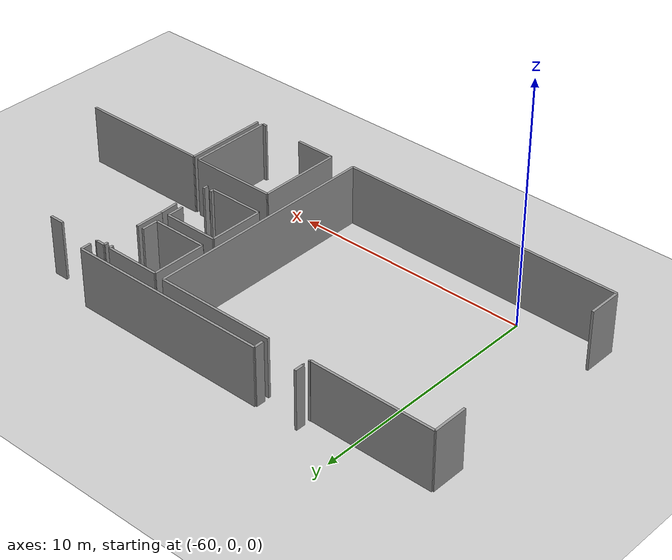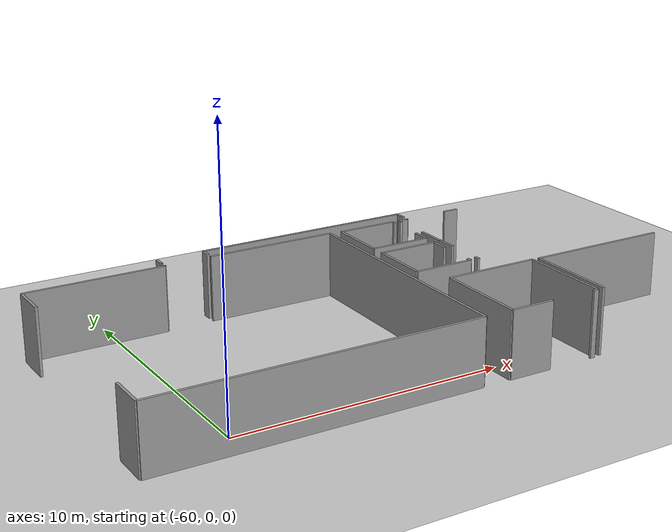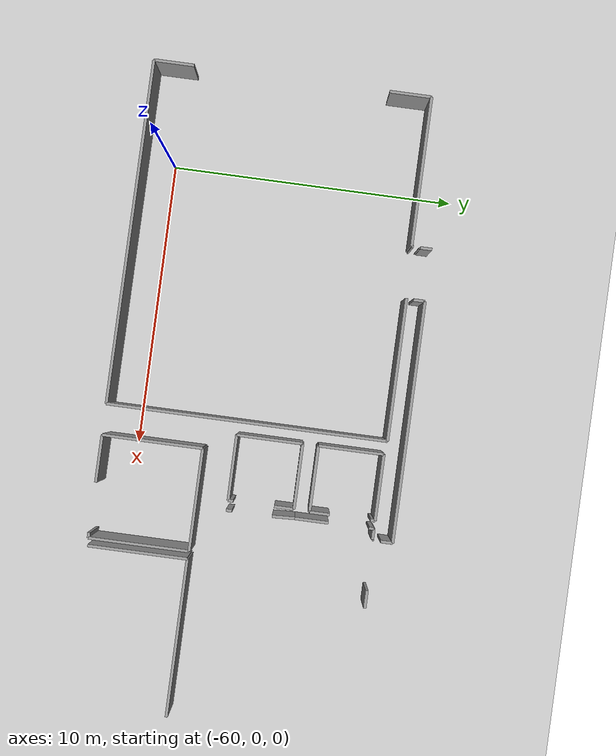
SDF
<sdf version="1.6">
 <world name="default">
  <model name="ground_plane">
   <static>1</static>
   <link name="link">
    <collision name="collision">
     <geometry><plane><normal>0 0 1</normal><size>100 100</size></plane></geometry>
     <surface><friction><ode><mu>100</mu><mu2>50</mu2></ode></friction></surface>
    </collision>
    <visual name="visual">
     <cast_shadows>0</cast_shadows>
     <geometry><plane><normal>0 0 1</normal><size>100 100</size></plane></geometry>
     <material>
      <script><uri>file://media/materials/scripts/gazebo.material</uri><name>Gazebo/Grey</name></script>
     </material>
    </visual>
   </link>
  </model>
  <model name="0510032196_A_40_1_104">
   <static>1</static>
   <link name="Wall_341">
    <collision name="Wall_341_Collision">
     <geometry><box><size>3.51939403182 0.1 2.5</size></box></geometry>
     <pose>1.75969701591 0 1.25 0 0 0</pose>
    </collision>
    <visual name="Wall_341_Visual">
     <pose>1.75969701591 0 1.25 0 0 0</pose>
     <geometry><box><size>3.51939403182 0.1 2.5</size></box></geometry>
     <material>
      <script><uri>file://media/materials/scripts/gazebo.material</uri><name>Gazebo/Grey</name></script>
      <ambient>1 1 1 1</ambient>
     </material>
    </visual>
    <pose>15.2802348635 -25.2311778761 0 0 0 1.57079632679</pose>
   </link>
   <link name="Wall_342">
    <collision name="Wall_342_Collision">
     <geometry><box><size>3.60784911799 0.1 2.5</size></box></geometry>
     <pose>1.803924559 0 1.25 0 0 0</pose>
    </collision>
    <visual name="Wall_342_Visual">
     <pose>1.803924559 0 1.25 0 0 0</pose>
     <geometry><box><size>3.60784911799 0.1 2.5</size></box></geometry>
     <material>
      <script><uri>file://media/materials/scripts/gazebo.material</uri><name>Gazebo/Grey</name></script>
      <ambient>1 1 1 1</ambient>
     </material>
    </visual>
    <pose>15.2802348635 -21.7117838442 0 0 0 0.0</pose>
   </link>
   <link name="Wall_343">
    <collision name="Wall_343_Collision">
     <geometry><box><size>3.52638401708 0.1 2.5</size></box></geometry>
     <pose>1.76319200854 0 1.25 0 0 0</pose>
    </collision>
    <visual name="Wall_343_Visual">
     <pose>1.76319200854 0 1.25 0 0 0</pose>
     <geometry><box><size>3.52638401708 0.1 2.5</size></box></geometry>
     <material>
      <script><uri>file://media/materials/scripts/gazebo.material</uri><name>Gazebo/Grey</name></script>
      <ambient>1 1 1 1</ambient>
     </material>
    </visual>
    <pose>18.8880839815 -21.7117838442 0 0 0 -1.57079632679</pose>
   </link>
   <link name="Wall_344">
    <collision name="Wall_344_Collision">
     <geometry><box><size>0.192288139901 0.1 2.5</size></box></geometry>
     <pose>0.0961440699507 0 1.25 0 0 0</pose>
    </collision>
    <visual name="Wall_344_Visual">
     <pose>0.0961440699507 0 1.25 0 0 0</pose>
     <geometry><box><size>0.192288139901 0.1 2.5</size></box></geometry>
     <material>
      <script><uri>file://media/materials/scripts/gazebo.material</uri><name>Gazebo/Grey</name></script>
      <ambient>1 1 1 1</ambient>
     </material>
    </visual>
    <pose>18.8880839815 -25.2381678613 0 0 0 3.14159265359</pose>
   </link>
   <link name="Wall_345">
    <collision name="Wall_345_Collision">
     <geometry><box><size>1.66070811716 0.1 2.5</size></box></geometry>
     <pose>0.830354058582 0 1.25 0 0 0</pose>
    </collision>
    <visual name="Wall_345_Visual">
     <pose>0.830354058582 0 1.25 0 0 0</pose>
     <geometry><box><size>1.66070811716 0.1 2.5</size></box></geometry>
     <material>
      <script><uri>file://media/materials/scripts/gazebo.material</uri><name>Gazebo/Grey</name></script>
      <ambient>1 1 1 1</ambient>
     </material>
    </visual>
    <pose>16.94092827 -25.2381678613 0 0 0 3.13738360215</pose>
   </link>
   <link name="Wall_346">
    <collision name="Wall_346_Collision">
     <geometry><box><size>3.49588226323 0.1 2.5</size></box></geometry>
     <pose>1.74794113162 0 1.25 0 0 0</pose>
    </collision>
    <visual name="Wall_346_Visual">
     <pose>1.74794113162 0 1.25 0 0 0</pose>
     <geometry><box><size>3.49588226323 0.1 2.5</size></box></geometry>
     <material>
      <script><uri>file://media/materials/scripts/gazebo.material</uri><name>Gazebo/Grey</name></script>
      <ambient>1 1 1 1</ambient>
     </material>
    </visual>
    <pose>19.1554826903 -25.2299069697 0 0 0 1.57079632679</pose>
   </link>
   <link name="Wall_347">
    <collision name="Wall_347_Collision">
     <geometry><box><size>5.53772050226 0.1 2.5</size></box></geometry>
     <pose>2.76886025113 0 1.25 0 0 0</pose>
    </collision>
    <visual name="Wall_347_Visual">
     <pose>2.76886025113 0 1.25 0 0 0</pose>
     <geometry><box><size>5.53772050226 0.1 2.5</size></box></geometry>
     <material>
      <script><uri>file://media/materials/scripts/gazebo.material</uri><name>Gazebo/Grey</name></script>
      <ambient>1 1 1 1</ambient>
     </material>
    </visual>
    <pose>19.1554826903 -21.7340247064 0 0 0 0.0</pose>
   </link>
   <link name="Wall_376">
    <collision name="Wall_376_Collision">
     <geometry><box><size>1.41184993137 0.1 2.5</size></box></geometry>
     <pose>0.705924965686 0 1.25 0 0 0</pose>
    </collision>
    <visual name="Wall_376_Visual">
     <pose>0.705924965686 0 1.25 0 0 0</pose>
     <geometry><box><size>1.41184993137 0.1 2.5</size></box></geometry>
     <material>
      <script><uri>file://media/materials/scripts/gazebo.material</uri><name>Gazebo/Grey</name></script>
      <ambient>1 1 1 1</ambient>
     </material>
    </visual>
    <pose>2.15342382187 -25.1807228916 0 0 0 1.57079632679</pose>
   </link>
   <link name="Wall_377">
    <collision name="Wall_377_Collision">
     <geometry><box><size>1.46154237202 0.1 2.5</size></box></geometry>
     <pose>0.73077118601 0 1.25 0 0 0</pose>
    </collision>
    <visual name="Wall_377_Visual">
     <pose>0.73077118601 0 1.25 0 0 0</pose>
     <geometry><box><size>1.46154237202 0.1 2.5</size></box></geometry>
     <material>
      <script><uri>file://media/materials/scripts/gazebo.material</uri><name>Gazebo/Grey</name></script>
      <ambient>1 1 1 1</ambient>
     </material>
    </visual>
    <pose>2.15342382187 -16.9200854049 0 0 0 1.57079632679</pose>
   </link>
   <link name="Wall_378">
    <collision name="Wall_378_Collision">
     <geometry><box><size>5.21948553709 0.1 2.5</size></box></geometry>
     <pose>2.60974276854 0 1.25 0 0 0</pose>
    </collision>
    <visual name="Wall_378_Visual">
     <pose>2.60974276854 0 1.25 0 0 0</pose>
     <geometry><box><size>5.21948553709 0.1 2.5</size></box></geometry>
     <material>
      <script><uri>file://media/materials/scripts/gazebo.material</uri><name>Gazebo/Grey</name></script>
      <ambient>1 1 1 1</ambient>
     </material>
    </visual>
    <pose>2.15342382187 -15.4585430329 0 0 0 0.0</pose>
   </link>
   <link name="Wall_379">
    <collision name="Wall_379_Collision">
     <geometry><box><size>0.0641807737278 0.1 2.5</size></box></geometry>
     <pose>0.0320903868639 0 1.25 0 0 0</pose>
    </collision>
    <visual name="Wall_379_Visual">
     <pose>0.0320903868639 0 1.25 0 0 0</pose>
     <geometry><box><size>0.0641807737278 0.1 2.5</size></box></geometry>
     <material>
      <script><uri>file://media/materials/scripts/gazebo.material</uri><name>Gazebo/Grey</name></script>
      <ambient>1 1 1 1</ambient>
     </material>
    </visual>
    <pose>7.37290935895 -15.4585430329 0 0 0 1.57079632679</pose>
   </link>
   <link name="Wall_380">
    <collision name="Wall_380_Collision">
     <geometry><box><size>5.00088963449 0.1 2.5</size></box></geometry>
     <pose>2.50044481724 0 1.25 0 0 0</pose>
    </collision>
    <visual name="Wall_380_Visual">
     <pose>2.50044481724 0 1.25 0 0 0</pose>
     <geometry><box><size>5.00088963449 0.1 2.5</size></box></geometry>
     <material>
      <script><uri>file://media/materials/scripts/gazebo.material</uri><name>Gazebo/Grey</name></script>
      <ambient>1 1 1 1</ambient>
     </material>
    </visual>
    <pose>9.18623862539 -15.3943622592 0 0 0 0.0</pose>
   </link>
   <link name="Wall_381">
    <collision name="Wall_381_Collision">
     <geometry><box><size>9.84202633318 0.1 2.5</size></box></geometry>
     <pose>4.92101316659 0 1.25 0 0 0</pose>
    </collision>
    <visual name="Wall_381_Visual">
     <pose>4.92101316659 0 1.25 0 0 0</pose>
     <geometry><box><size>9.84202633318 0.1 2.5</size></box></geometry>
     <material>
      <script><uri>file://media/materials/scripts/gazebo.material</uri><name>Gazebo/Grey</name></script>
      <ambient>1 1 1 1</ambient>
     </material>
    </visual>
    <pose>14.1871282599 -15.3943622592 0 0 0 -1.57079632679</pose>
   </link>
   <link name="Wall_382">
    <collision name="Wall_382_Collision">
     <geometry><box><size>12.033833187 0.1 2.5</size></box></geometry>
     <pose>6.01691659348 0 1.25 0 0 0</pose>
    </collision>
    <visual name="Wall_382_Visual">
     <pose>6.01691659348 0 1.25 0 0 0</pose>
     <geometry><box><size>12.033833187 0.1 2.5</size></box></geometry>
     <material>
      <script><uri>file://media/materials/scripts/gazebo.material</uri><name>Gazebo/Grey</name></script>
      <ambient>1 1 1 1</ambient>
     </material>
    </visual>
    <pose>14.1871282599 -25.2363885923 0 0 0 3.13696687073</pose>
   </link>
   <link name="Wall_383">
    <collision name="Wall_383_Collision">
     <geometry><box><size>2.28941080779 0.1 2.5</size></box></geometry>
     <pose>1.14470540389 0 1.25 0 0 0</pose>
    </collision>
    <visual name="Wall_383_Visual">
     <pose>1.14470540389 0 1.25 0 0 0</pose>
     <geometry><box><size>2.28941080779 0.1 2.5</size></box></geometry>
     <material>
      <script><uri>file://media/materials/scripts/gazebo.material</uri><name>Gazebo/Grey</name></script>
      <ambient>1 1 1 1</ambient>
     </material>
    </visual>
    <pose>14.6582532662 -17.744649484 0 0 0 1.57079632679</pose>
   </link>
   <link name="Wall_384">
    <collision name="Wall_384_Collision">
     <geometry><box><size>2.32270855574 0.1 2.5</size></box></geometry>
     <pose>1.16135427787 0 1.25 0 0 0</pose>
    </collision>
    <visual name="Wall_384_Visual">
     <pose>1.16135427787 0 1.25 0 0 0</pose>
     <geometry><box><size>2.32270855574 0.1 2.5</size></box></geometry>
     <material>
      <script><uri>file://media/materials/scripts/gazebo.material</uri><name>Gazebo/Grey</name></script>
      <ambient>1 1 1 1</ambient>
     </material>
    </visual>
    <pose>14.6582532662 -15.4552386762 0 0 0 0.0</pose>
   </link>
   <link name="Wall_385">
    <collision name="Wall_385_Collision">
     <geometry><box><size>0.157719485537 0.1 2.5</size></box></geometry>
     <pose>0.0788597427685 0 1.25 0 0 0</pose>
    </collision>
    <visual name="Wall_385_Visual">
     <pose>0.0788597427685 0 1.25 0 0 0</pose>
     <geometry><box><size>0.157719485537 0.1 2.5</size></box></geometry>
     <material>
      <script><uri>file://media/materials/scripts/gazebo.material</uri><name>Gazebo/Grey</name></script>
      <ambient>1 1 1 1</ambient>
     </material>
    </visual>
    <pose>16.980961822 -15.4552386762 0 0 0 -1.57079632679</pose>
   </link>
   <link name="Wall_386">
    <collision name="Wall_386_Collision">
     <geometry><box><size>0.698235981902 0.1 2.5</size></box></geometry>
     <pose>0.349117990951 0 1.25 0 0 0</pose>
    </collision>
    <visual name="Wall_386_Visual">
     <pose>0.349117990951 0 1.25 0 0 0</pose>
     <geometry><box><size>0.698235981902 0.1 2.5</size></box></geometry>
     <material>
      <script><uri>file://media/materials/scripts/gazebo.material</uri><name>Gazebo/Grey</name></script>
      <ambient>1 1 1 1</ambient>
     </material>
    </visual>
    <pose>16.980961822 -17.0489553149 0 0 0 -1.57079632679</pose>
   </link>
   <link name="Wall_387">
    <collision name="Wall_387_Collision">
     <geometry><box><size>2.32270994653 0.1 2.5</size></box></geometry>
     <pose>1.16135497327 0 1.25 0 0 0</pose>
    </collision>
    <visual name="Wall_387_Visual">
     <pose>1.16135497327 0 1.25 0 0 0</pose>
     <geometry><box><size>2.32270994653 0.1 2.5</size></box></geometry>
     <material>
      <script><uri>file://media/materials/scripts/gazebo.material</uri><name>Gazebo/Grey</name></script>
      <ambient>1 1 1 1</ambient>
     </material>
    </visual>
    <pose>16.980961822 -17.7471912968 0 0 0 3.14049832266</pose>
   </link>
   <link name="Wall_388">
    <collision name="Wall_388_Collision">
     <geometry><box><size>2.30631386305 0.1 2.5</size></box></geometry>
     <pose>1.15315693152 0 1.25 0 0 0</pose>
    </collision>
    <visual name="Wall_388_Visual">
     <pose>1.15315693152 0 1.25 0 0 0</pose>
     <geometry><box><size>2.30631386305 0.1 2.5</size></box></geometry>
     <material>
      <script><uri>file://media/materials/scripts/gazebo.material</uri><name>Gazebo/Grey</name></script>
      <ambient>1 1 1 1</ambient>
     </material>
    </visual>
    <pose>14.6635910732 -20.6035534543 0 0 0 1.57079632679</pose>
   </link>
   <link name="Wall_389">
    <collision name="Wall_389_Collision">
     <geometry><box><size>2.29385898022 0.1 2.5</size></box></geometry>
     <pose>1.14692949011 0 1.25 0 0 0</pose>
    </collision>
    <visual name="Wall_389_Visual">
     <pose>1.14692949011 0 1.25 0 0 0</pose>
     <geometry><box><size>2.29385898022 0.1 2.5</size></box></geometry>
     <material>
      <script><uri>file://media/materials/scripts/gazebo.material</uri><name>Gazebo/Grey</name></script>
      <ambient>1 1 1 1</ambient>
     </material>
    </visual>
    <pose>14.6635910732 -18.2972395913 0 0 0 0.0</pose>
   </link>
   <link name="Wall_390">
    <collision name="Wall_390_Collision">
     <geometry><box><size>0.693787809466 0.1 2.5</size></box></geometry>
     <pose>0.346893904733 0 1.25 0 0 0</pose>
    </collision>
    <visual name="Wall_390_Visual">
     <pose>0.346893904733 0 1.25 0 0 0</pose>
     <geometry><box><size>0.693787809466 0.1 2.5</size></box></geometry>
     <material>
      <script><uri>file://media/materials/scripts/gazebo.material</uri><name>Gazebo/Grey</name></script>
      <ambient>1 1 1 1</ambient>
     </material>
    </visual>
    <pose>16.9574500534 -18.2972395913 0 0 0 -1.57079632679</pose>
   </link>
   <link name="Wall_391">
    <collision name="Wall_391_Collision">
     <geometry><box><size>0.176783081694 0.1 2.5</size></box></geometry>
     <pose>0.0883915408469 0 1.25 0 0 0</pose>
    </collision>
    <visual name="Wall_391_Visual">
     <pose>0.0883915408469 0 1.25 0 0 0</pose>
     <geometry><box><size>0.176783081694 0.1 2.5</size></box></geometry>
     <material>
      <script><uri>file://media/materials/scripts/gazebo.material</uri><name>Gazebo/Grey</name></script>
      <ambient>1 1 1 1</ambient>
     </material>
    </visual>
    <pose>16.9574500534 -20.4241014692 0 0 0 -1.57079632679</pose>
   </link>
   <link name="Wall_392">
    <collision name="Wall_392_Collision">
     <geometry><box><size>2.29386053286 0.1 2.5</size></box></geometry>
     <pose>1.14693026643 0 1.25 0 0 0</pose>
    </collision>
    <visual name="Wall_392_Visual">
     <pose>1.14693026643 0 1.25 0 0 0</pose>
     <geometry><box><size>2.29386053286 0.1 2.5</size></box></geometry>
     <material>
      <script><uri>file://media/materials/scripts/gazebo.material</uri><name>Gazebo/Grey</name></script>
      <ambient>1 1 1 1</ambient>
     </material>
    </visual>
    <pose>16.9574500534 -20.6008845509 0 0 0 -3.14042915475</pose>
   </link>
   <link name="Wall_393">
    <collision name="Wall_393_Collision">
     <geometry><box><size>1.18168878044 0.1 2.5</size></box></geometry>
     <pose>0.590844390219 0 1.25 0 0 0</pose>
    </collision>
    <visual name="Wall_393_Visual">
     <pose>0.590844390219 0 1.25 0 0 0</pose>
     <geometry><box><size>1.18168878044 0.1 2.5</size></box></geometry>
     <material>
      <script><uri>file://media/materials/scripts/gazebo.material</uri><name>Gazebo/Grey</name></script>
      <ambient>1 1 1 1</ambient>
     </material>
    </visual>
    <pose>17.2665344924 -18.2331859082 0 0 0 1.57079632679</pose>
   </link>
   <link name="Wall_394">
    <collision name="Wall_394_Collision">
     <geometry><box><size>0.170301459001 0.1 2.5</size></box></geometry>
     <pose>0.0851507295003 0 1.25 0 0 0</pose>
    </collision>
    <visual name="Wall_394_Visual">
     <pose>0.0851507295003 0 1.25 0 0 0</pose>
     <geometry><box><size>0.170301459001 0.1 2.5</size></box></geometry>
     <material>
      <script><uri>file://media/materials/scripts/gazebo.material</uri><name>Gazebo/Grey</name></script>
      <ambient>1 1 1 1</ambient>
     </material>
    </visual>
    <pose>17.2665344924 -15.6263026791 0 0 0 1.57079632679</pose>
   </link>
   <link name="Wall_395">
    <collision name="Wall_395_Collision">
     <geometry><box><size>0.372502668903 0.1 2.5</size></box></geometry>
     <pose>0.186251334452 0 1.25 0 0 0</pose>
    </collision>
    <visual name="Wall_395_Visual">
     <pose>0.186251334452 0 1.25 0 0 0</pose>
     <geometry><box><size>0.372502668903 0.1 2.5</size></box></geometry>
     <material>
      <script><uri>file://media/materials/scripts/gazebo.material</uri><name>Gazebo/Grey</name></script>
      <ambient>1 1 1 1</ambient>
     </material>
    </visual>
    <pose>17.2665344924 -15.4560012201 0 0 0 0.0</pose>
   </link>
   <link name="Wall_396">
    <collision name="Wall_396_Collision">
     <geometry><box><size>0.0494382593666 0.1 2.5</size></box></geometry>
     <pose>0.0247191296833 0 1.25 0 0 0</pose>
    </collision>
    <visual name="Wall_396_Visual">
     <pose>0.0247191296833 0 1.25 0 0 0</pose>
     <geometry><box><size>0.0494382593666 0.1 2.5</size></box></geometry>
     <material>
      <script><uri>file://media/materials/scripts/gazebo.material</uri><name>Gazebo/Grey</name></script>
      <ambient>1 1 1 1</ambient>
     </material>
    </visual>
    <pose>17.6390371613 -15.4560012201 0 0 0 1.57079632679</pose>
   </link>
   <link name="Wall_397">
    <collision name="Wall_397_Collision">
     <geometry><box><size>0.611305983427 0.1 2.5</size></box></geometry>
     <pose>0.305652991714 0 1.25 0 0 0</pose>
    </collision>
    <visual name="Wall_397_Visual">
     <pose>0.305652991714 0 1.25 0 0 0</pose>
     <geometry><box><size>0.611305983427 0.1 2.5</size></box></geometry>
     <material>
      <script><uri>file://media/materials/scripts/gazebo.material</uri><name>Gazebo/Grey</name></script>
      <ambient>1 1 1 1</ambient>
     </material>
    </visual>
    <pose>19.422881399 -15.4065629607 0 0 0 0.0</pose>
   </link>
   <link name="Wall_405">
    <collision name="Wall_405_Collision">
     <geometry><box><size>0.205251385288 0.1 2.5</size></box></geometry>
     <pose>0.102625692644 0 1.25 0 0 0</pose>
    </collision>
    <visual name="Wall_405_Visual">
     <pose>0.102625692644 0 1.25 0 0 0</pose>
     <geometry><box><size>0.205251385288 0.1 2.5</size></box></geometry>
     <material>
      <script><uri>file://media/materials/scripts/gazebo.material</uri><name>Gazebo/Grey</name></script>
      <ambient>1 1 1 1</ambient>
     </material>
    </visual>
    <pose>17.3004676936 -20.6270652229 0 0 0 1.57079632679</pose>
   </link>
   <link name="Wall_406">
    <collision name="Wall_406_Collision">
     <geometry><box><size>0.783867349667 0.1 2.5</size></box></geometry>
     <pose>0.391933674833 0 1.25 0 0 0</pose>
    </collision>
    <visual name="Wall_406_Visual">
     <pose>0.391933674833 0 1.25 0 0 0</pose>
     <geometry><box><size>0.783867349667 0.1 2.5</size></box></geometry>
     <material>
      <script><uri>file://media/materials/scripts/gazebo.material</uri><name>Gazebo/Grey</name></script>
      <ambient>1 1 1 1</ambient>
     </material>
    </visual>
    <pose>17.3004676936 -19.0163184383 0 0 0 1.61409932757</pose>
   </link>
   <link name="Wall_501">
    <collision name="Wall_501_Collision">
     <geometry><box><size>0.418382390321 0.1 2.5</size></box></geometry>
     <pose>0.20919119516 0 1.25 0 0 0</pose>
    </collision>
    <visual name="Wall_501_Visual">
     <pose>0.20919119516 0 1.25 0 0 0</pose>
     <geometry><box><size>0.418382390321 0.1 2.5</size></box></geometry>
     <material>
      <script><uri>file://media/materials/scripts/gazebo.material</uri><name>Gazebo/Grey</name></script>
      <ambient>1 1 1 1</ambient>
     </material>
    </visual>
    <pose>17.6666158304 -15.1655991053 0 0 0 1.57079632679</pose>
   </link>
   <link name="Wall_502">
    <collision name="Wall_502_Collision">
     <geometry><box><size>8.45826343348 0.1 2.5</size></box></geometry>
     <pose>4.22913171674 0 1.25 0 0 0</pose>
    </collision>
    <visual name="Wall_502_Visual">
     <pose>4.22913171674 0 1.25 0 0 0</pose>
     <geometry><box><size>8.45826343348 0.1 2.5</size></box></geometry>
     <material>
      <script><uri>file://media/materials/scripts/gazebo.material</uri><name>Gazebo/Grey</name></script>
      <ambient>1 1 1 1</ambient>
     </material>
    </visual>
    <pose>17.6666158304 -14.747216715 0 0 0 3.14159265359</pose>
   </link>
   <link name="Wall_503">
    <collision name="Wall_503_Collision">
     <geometry><box><size>0.403385694677 0.1 2.5</size></box></geometry>
     <pose>0.201692847339 0 1.25 0 0 0</pose>
    </collision>
    <visual name="Wall_503_Visual">
     <pose>0.201692847339 0 1.25 0 0 0</pose>
     <geometry><box><size>0.403385694677 0.1 2.5</size></box></geometry>
     <material>
      <script><uri>file://media/materials/scripts/gazebo.material</uri><name>Gazebo/Grey</name></script>
      <ambient>1 1 1 1</ambient>
     </material>
    </visual>
    <pose>9.20835239693 -14.747216715 0 0 0 -1.57079632679</pose>
   </link>
   <link name="Wall_504">
    <collision name="Wall_504_Collision">
     <geometry><box><size>0.0330435666717 0.1 2.5</size></box></geometry>
     <pose>0.0165217833359 0 1.25 0 0 0</pose>
    </collision>
    <visual name="Wall_504_Visual">
     <pose>0.0165217833359 0 1.25 0 0 0</pose>
     <geometry><box><size>0.0330435666717 0.1 2.5</size></box></geometry>
     <material>
      <script><uri>file://media/materials/scripts/gazebo.material</uri><name>Gazebo/Grey</name></script>
      <ambient>1 1 1 1</ambient>
     </material>
    </visual>
    <pose>7.41942453358 -15.1506024096 0 0 0 3.14159265359</pose>
   </link>
   <link name="Wall_505">
    <collision name="Wall_505_Collision">
     <geometry><box><size>0.408977682883 0.1 2.5</size></box></geometry>
     <pose>0.204488841442 0 1.25 0 0 0</pose>
    </collision>
    <visual name="Wall_505_Visual">
     <pose>0.204488841442 0 1.25 0 0 0</pose>
     <geometry><box><size>0.408977682883 0.1 2.5</size></box></geometry>
     <material>
      <script><uri>file://media/materials/scripts/gazebo.material</uri><name>Gazebo/Grey</name></script>
      <ambient>1 1 1 1</ambient>
     </material>
    </visual>
    <pose>7.38638096691 -15.1506024096 0 0 0 1.57079632679</pose>
   </link>
   <pose>-65.45 24.1679019877 0 0 0 0</pose>
  </model>
 </world>
</sdf>
